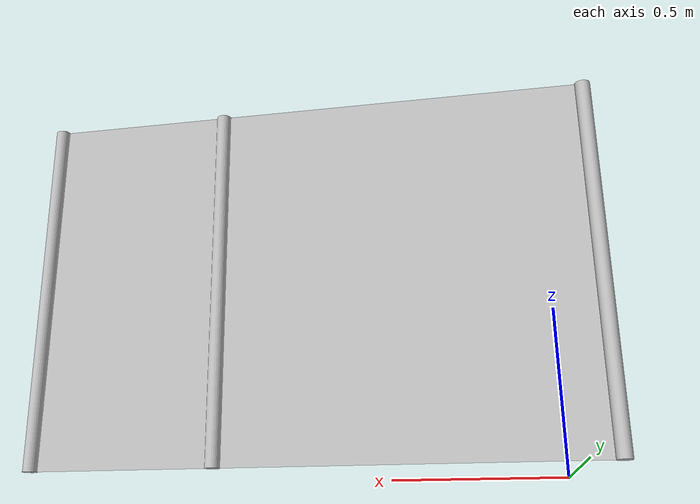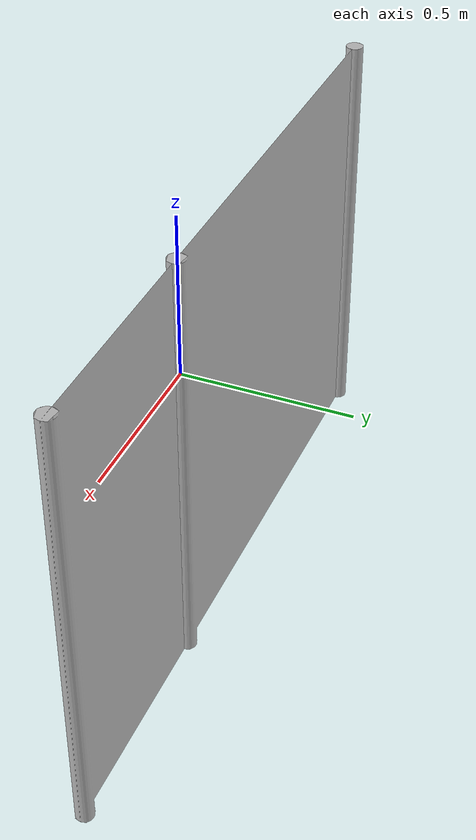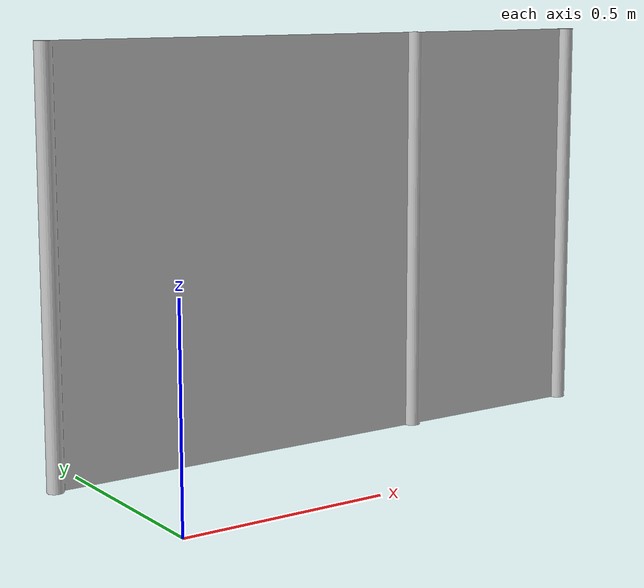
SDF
<?xml version="1.0"?>
<sdf version="1.4">
   <model name="fence_1_5">
   <pose>0 0 0  0 0 0</pose>
   <static>true</static>
   <link name="body">
   <collision name="body">
     <geometry>
       <mesh>
          <uri>model://fence_1_5/meshes/Tenax+1x1_5.dae</uri>
       </mesh>
     </geometry>
   </collision>
   <visual name="visual">
     <geometry>
       <mesh><uri>model://fence_1_5/meshes/Tenax+1x1_5.dae</uri></mesh>
     </geometry>
   </visual>
   </link>
   </model>
</sdf>
